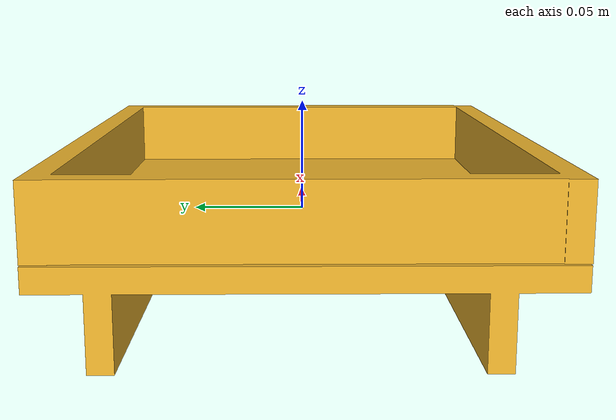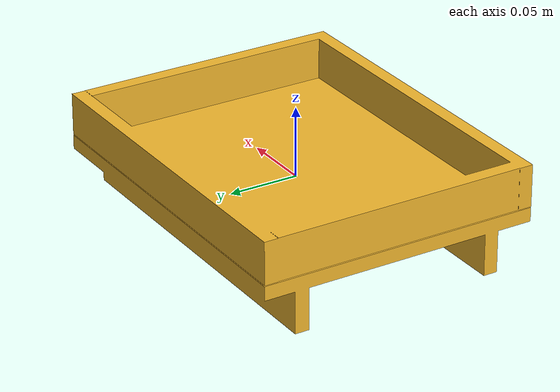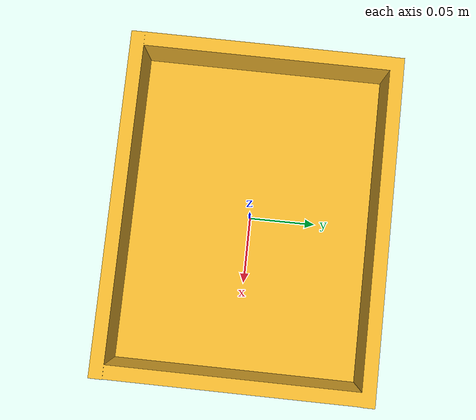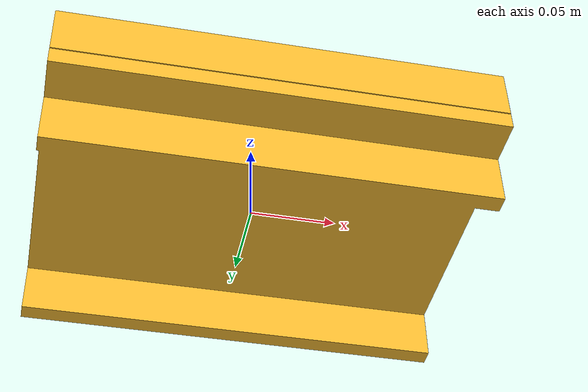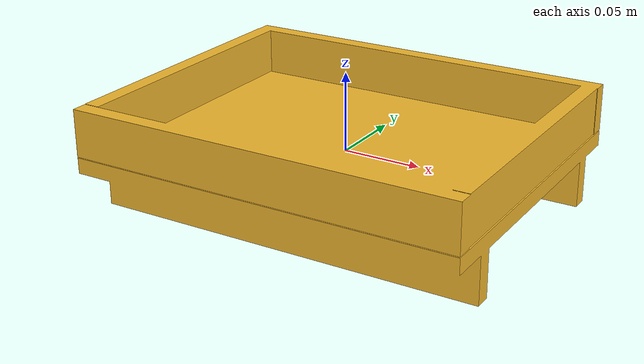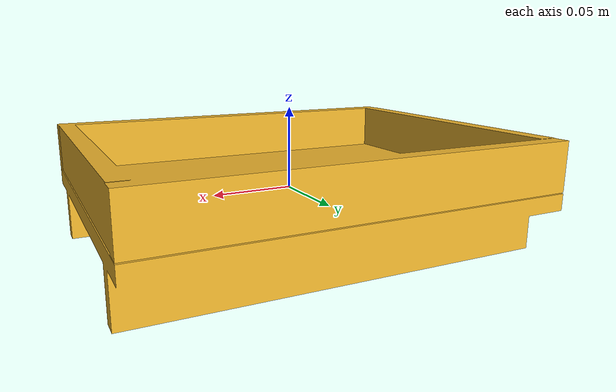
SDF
<?xml version="1.0"?>
<sdf version="1.9">
  <model name="tray">
    <static>false</static>
    <link name="tray_link">
      <inertial>
        <mass>0.250000</mass>
        <inertia>
          <ixx>0.000250000</ixx>
          <iyy>0.000250000</iyy>
          <izz>0.000250000</izz>
          <ixy>0</ixy>
          <ixz>0</ixz>
          <iyz>0</iyz>
        </inertia>
      </inertial>
      <visual name="tray_visual">
        <geometry>
          <mesh>
            <uri>meshes/tray.obj</uri>
          </mesh>
        </geometry>
        <material>
          <ambient>0.237500 0.180000 0.045000 1.000000</ambient>
          <diffuse>0.950000 0.720000 0.180000 1.000000</diffuse>
          <specular>0.120000 0.120000 0.120000 1.000000</specular>
        </material>
      </visual>
      <collision name="tray_tray_backward_collision">
        <pose>0.119709224 0.000060976 0.020297021 0 0 0</pose>
        <geometry>
          <box>
            <size>0.010000005 0.180000007 0.030000001</size>
          </box>
        </geometry>
        <surface>
          <friction>
            <ode>
              <mu>1.0</mu>
              <mu2>1.0</mu2>
            </ode>
          </friction>
        </surface>
      </collision>
      <collision name="tray_tray_bottom_collision">
        <pose>0.000009209 0.000060976 -0.000502974 0 0 0</pose>
        <geometry>
          <box>
            <size>0.250000000 0.200000003 0.010000000</size>
          </box>
        </geometry>
        <surface>
          <friction>
            <ode>
              <mu>1.0</mu>
              <mu2>1.0</mu2>
            </ode>
          </friction>
        </surface>
      </collision>
      <collision name="tray_tray_forward_collision">
        <pose>-0.119990796 0.000060976 0.020297021 0 0 0</pose>
        <geometry>
          <box>
            <size>0.010000005 0.180000007 0.030000001</size>
          </box>
        </geometry>
        <surface>
          <friction>
            <ode>
              <mu>1.0</mu>
              <mu2>1.0</mu2>
            </ode>
          </friction>
        </surface>
      </collision>
      <collision name="tray_tray_left_collision">
        <pose>0.000009209 0.094960973 0.020097047 0 0 0</pose>
        <geometry>
          <box>
            <size>0.250000000 0.010000005 0.030000001</size>
          </box>
        </geometry>
        <surface>
          <friction>
            <ode>
              <mu>1.0</mu>
              <mu2>1.0</mu2>
            </ode>
          </friction>
        </surface>
      </collision>
      <collision name="tray_tray_leg_left_collision">
        <pose>0.000009209 0.073060974 -0.020302951 0 0 0</pose>
        <geometry>
          <box>
            <size>0.250000000 0.010000005 0.030000001</size>
          </box>
        </geometry>
        <surface>
          <friction>
            <ode>
              <mu>1.0</mu>
              <mu2>1.0</mu2>
            </ode>
          </friction>
        </surface>
      </collision>
      <collision name="tray_tray_leg_right_collision">
        <pose>0.000009209 -0.069539040 -0.020302951 0 0 0</pose>
        <geometry>
          <box>
            <size>0.250000000 0.010000005 0.030000001</size>
          </box>
        </geometry>
        <surface>
          <friction>
            <ode>
              <mu>1.0</mu>
              <mu2>1.0</mu2>
            </ode>
          </friction>
        </surface>
      </collision>
      <collision name="tray_tray_right_collision">
        <pose>0.000009209 -0.095039040 0.020097047 0 0 0</pose>
        <geometry>
          <box>
            <size>0.250000000 0.010000005 0.030000001</size>
          </box>
        </geometry>
        <surface>
          <friction>
            <ode>
              <mu>1.0</mu>
              <mu2>1.0</mu2>
            </ode>
          </friction>
        </surface>
      </collision>
    </link>
  </model>
</sdf>
